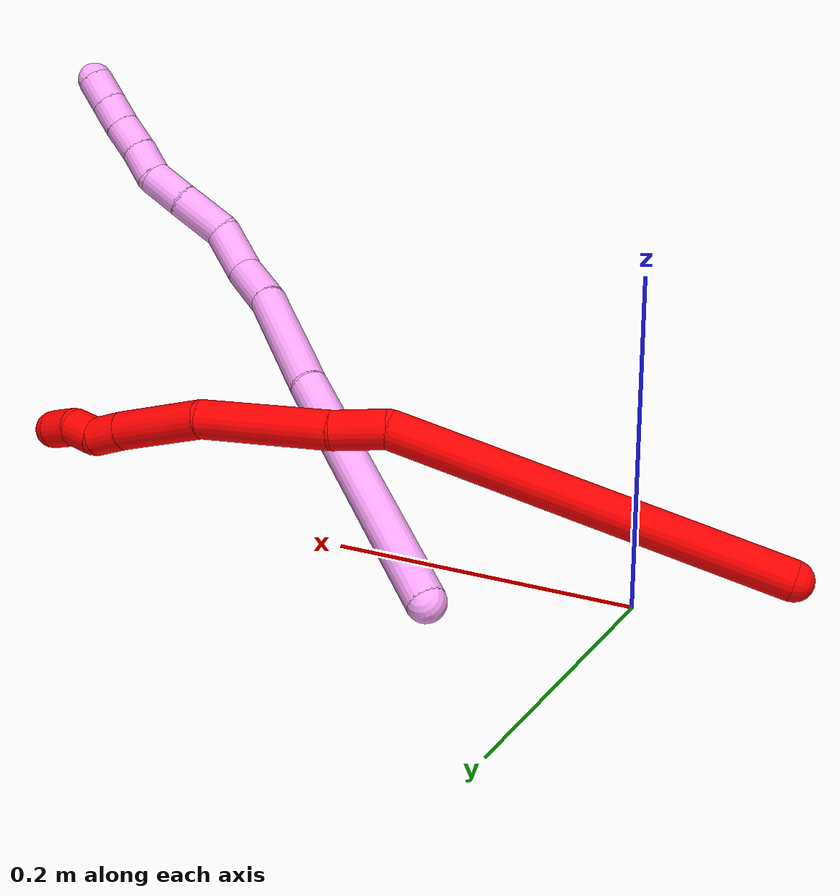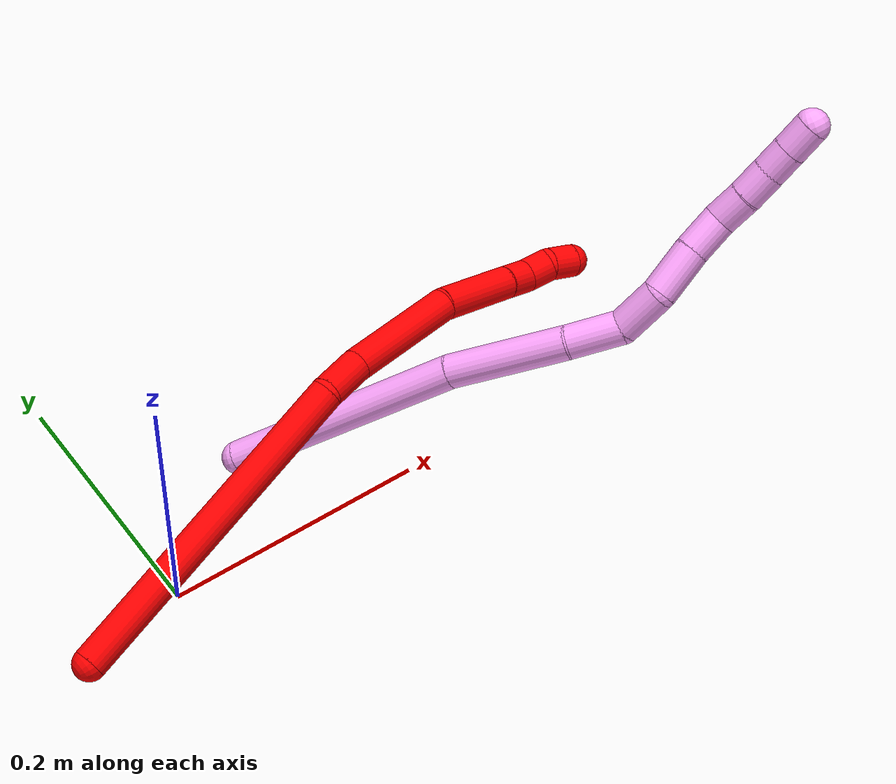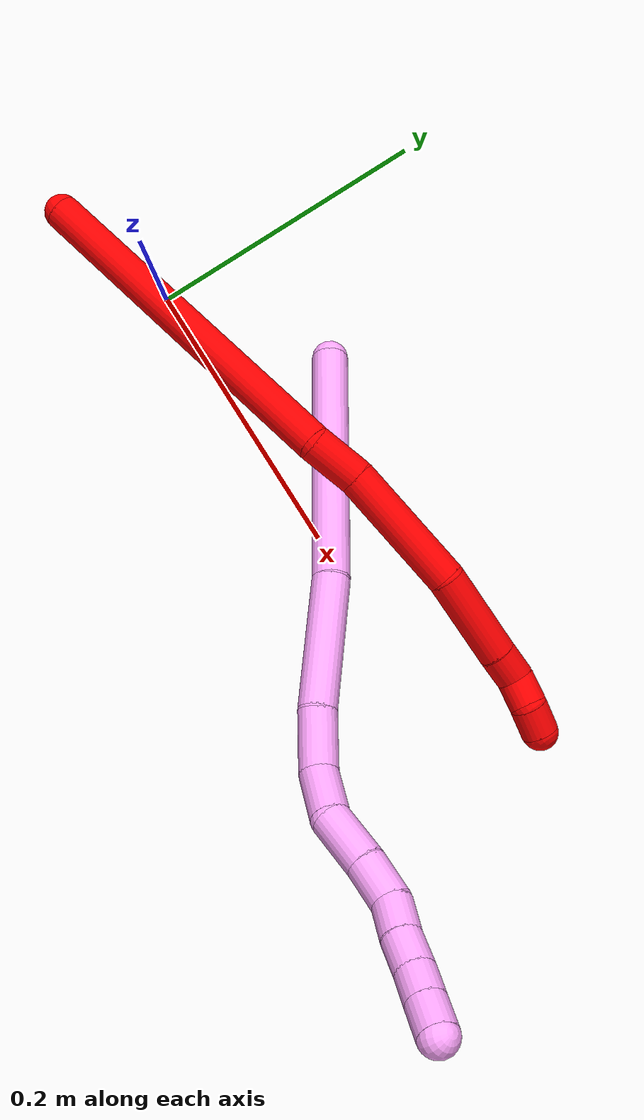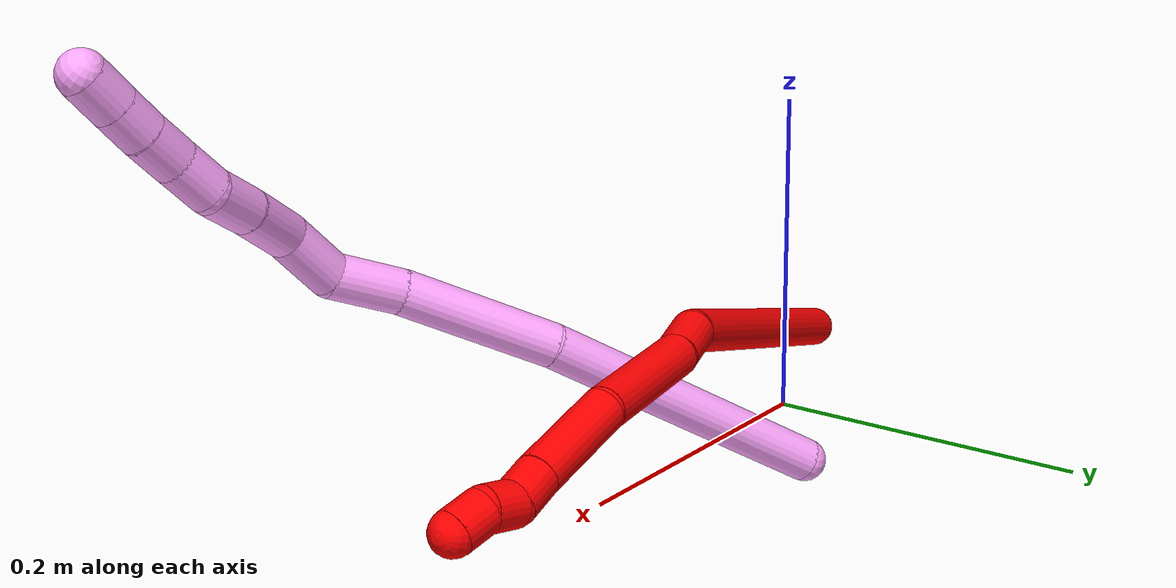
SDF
<sdf version="1.7">
 <world name="default">
  <model name="photoneo_s_sensor">
   <static>1</static>
   <pose>0 0 2 1.57079 1.57079 3.14159</pose>
   <link name="link">
    <inertial><mass>0.1</mass></inertial>
    <sensor name="sensor" type="depth">
     <update_rate>30</update_rate>
     <camera>
      <horizontal_fov>1.22</horizontal_fov>
      <image><width>1920</width><height>1200</height><format>B8G8R8</format></image>
      <clip><near>0.1</near><far>4</far></clip>
      <depth_camera><output>points</output></depth_camera>
     </camera>
     <plugin name="camera_plugin" filename="libgazebo_ros_depth_camera.so">
      <baseline>0.2</baseline>
      <alwaysOn>1</alwaysOn>
      <updateRate>0.0</updateRate>
      <cameraName>camera_ir</cameraName>
      <imageTopicName>/camera/color/image_raw</imageTopicName>
      <cameraInfoTopicName>/camera/color/camera_info</cameraInfoTopicName>
      <depthImageTopicName>/camera/depth/image_raw</depthImageTopicName>
      <depthImageCameraInfoTopicName>/camera/depth/camera_info</depthImageCameraInfoTopicName>
      <pointCloudTopicName>/camera/depth/points</pointCloudTopicName>
      <frameName>fr_optical</frameName>
      <pointCloudCutoff>0.1</pointCloudCutoff>
      <pointCloudCutoffMax>2.0</pointCloudCutoffMax>
      <distortionK1>0</distortionK1>
      <distortionK2>0</distortionK2>
      <distortionK3>0</distortionK3>
      <distortionT1>0</distortionT1>
      <distortionT2>0</distortionT2>
      <CxPrime>0</CxPrime>
      <Cx>0</Cx>
      <Cy>0</Cy>
      <focalLength>0</focalLength>
      <hackBaseline>0</hackBaseline>
     </plugin>
    </sensor>
   </link>
  </model>
  <model name="bin">
   <static>1</static>
   <link name="bottom">
    <collision name="collision-bottom">
     <pose>0 0 -0.01 0 -0 0</pose>
     <geometry><box><size>0.8 0.6 0.02</size></box></geometry>
     <surface>
      <friction><ode><mu>100</mu><mu2>100</mu2></ode></friction>
      <contact><collide_bitmask>65535</collide_bitmask></contact>
     </surface>
    </collision>
   </link>
   <link name="west_wall">
    <collision name="collision-west_wall">
     <pose>-0.41 0 0.1 0 -0 0</pose>
     <geometry><box><size>0.02 0.6 0.2</size></box></geometry>
     <surface>
      <friction><ode><mu>100</mu><mu2>100</mu2></ode></friction>
      <contact><collide_bitmask>65535</collide_bitmask></contact>
     </surface>
    </collision>
   </link>
   <link name="east_wall">
    <collision name="collision-east_wall">
     <pose>0.41 0 0.1 0 -0 0</pose>
     <geometry><box><size>0.02 0.6 0.2</size></box></geometry>
     <surface>
      <friction><ode><mu>100</mu><mu2>100</mu2></ode></friction>
      <contact><collide_bitmask>65535</collide_bitmask></contact>
     </surface>
    </collision>
   </link>
   <link name="south_wall">
    <collision name="collision-south_wall">
     <pose>0 -0.31 0.1 0 -0 0</pose>
     <geometry><box><size>0.8 0.02 0.2</size></box></geometry>
     <surface>
      <friction><ode><mu>100</mu><mu2>100</mu2></ode></friction>
      <contact><collide_bitmask>65535</collide_bitmask></contact>
     </surface>
    </collision>
   </link>
   <link name="north_wall">
    <collision name="collision-north_wall">
     <pose>0 0.31 0.1 0 -0 0</pose>
     <geometry><box><size>0.8 0.02 0.2</size></box></geometry>
     <surface>
      <friction><ode><mu>100</mu><mu2>100</mu2></ode></friction>
      <contact><collide_bitmask>65535</collide_bitmask></contact>
     </surface>
    </collision>
   </link>
  </model>
  <model name="2">
   <static>0</static>
   <link name="2">
    <collision name="collision-cylinder-e_1_1_4">
     <pose>0.023827 -0.013552 0.123071 0.109673 0.190116 0.010467</pose>
     <geometry><cylinder><radius>0.0125</radius><length>0.252172</length></cylinder></geometry>
     <surface>
      <friction><ode><mu>1.16</mu><mu2>1.16</mu2><slip1>0</slip1><slip2>0</slip2></ode></friction>
      <contact><ode><kp>1e+06</kp><kd>1</kd><max_vel>0</max_vel><min_depth>0.001</min_depth></ode></contact>
     </surface>
    </collision>
    <visual name="visual-cylinder-e_1_1_4">
     <pose>0.023827 -0.013552 0.123071 0.109673 0.190116 0.010467</pose>
     <geometry><cylinder><radius>0.0125</radius><length>0.252172</length></cylinder></geometry>
     <material><ambient>1 0 0 1</ambient></material>
    </visual>
    <collision name="collision-cylinder-e_2_4_5">
     <pose>0.045763 -0.033029 0.262686 0.343913 -0.107141 -0.018625</pose>
     <geometry><cylinder><radius>0.0125</radius><length>0.035351</length></cylinder></geometry>
     <surface>
      <friction><ode><mu>1.16</mu><mu2>1.16</mu2><slip1>0</slip1><slip2>0</slip2></ode></friction>
      <contact><ode><kp>1e+06</kp><kd>1</kd><max_vel>0</max_vel><min_depth>0.001</min_depth></ode></contact>
     </surface>
    </collision>
    <visual name="visual-cylinder-e_2_4_5">
     <pose>0.045763 -0.033029 0.262686 0.343913 -0.107141 -0.018625</pose>
     <geometry><cylinder><radius>0.0125</radius><length>0.035351</length></cylinder></geometry>
     <material><ambient>1 0 0 1</ambient></material>
    </visual>
    <collision name="collision-cylinder-e_3_5_6">
     <pose>0.038347 -0.046118 0.322178 0.165275 -0.126242 -0.01047</pose>
     <geometry><cylinder><radius>0.0125</radius><length>0.087778</length></cylinder></geometry>
     <surface>
      <friction><ode><mu>1.16</mu><mu2>1.16</mu2><slip1>0</slip1><slip2>0</slip2></ode></friction>
      <contact><ode><kp>1e+06</kp><kd>1</kd><max_vel>0</max_vel><min_depth>0.001</min_depth></ode></contact>
     </surface>
    </collision>
    <visual name="visual-cylinder-e_3_5_6">
     <pose>0.038347 -0.046118 0.322178 0.165275 -0.126242 -0.01047</pose>
     <geometry><cylinder><radius>0.0125</radius><length>0.087778</length></cylinder></geometry>
     <material><ambient>1 0 0 1</ambient></material>
    </visual>
    <collision name="collision-cylinder-e_4_6_7">
     <pose>0.021132 -0.057952 0.393423 0.163551 -0.387 -0.032117</pose>
     <geometry><cylinder><radius>0.0125</radius><length>0.061943</length></cylinder></geometry>
     <surface>
      <friction><ode><mu>1.16</mu><mu2>1.16</mu2><slip1>0</slip1><slip2>0</slip2></ode></friction>
      <contact><ode><kp>1e+06</kp><kd>1</kd><max_vel>0</max_vel><min_depth>0.001</min_depth></ode></contact>
     </surface>
    </collision>
    <visual name="visual-cylinder-e_4_6_7">
     <pose>0.021132 -0.057952 0.393423 0.163551 -0.387 -0.032117</pose>
     <geometry><cylinder><radius>0.0125</radius><length>0.061943</length></cylinder></geometry>
     <material><ambient>1 0 0 1</ambient></material>
    </visual>
    <collision name="collision-cylinder-e_5_7_8">
     <pose>0.00487 -0.064847 0.431583 0.221945 -0.424835 -0.048055</pose>
     <geometry><cylinder><radius>0.0125</radius><length>0.022192</length></cylinder></geometry>
     <surface>
      <friction><ode><mu>1.16</mu><mu2>1.16</mu2><slip1>0</slip1><slip2>0</slip2></ode></friction>
      <contact><ode><kp>1e+06</kp><kd>1</kd><max_vel>0</max_vel><min_depth>0.001</min_depth></ode></contact>
     </surface>
    </collision>
    <visual name="visual-cylinder-e_5_7_8">
     <pose>0.00487 -0.064847 0.431583 0.221945 -0.424835 -0.048055</pose>
     <geometry><cylinder><radius>0.0125</radius><length>0.022192</length></cylinder></geometry>
     <material><ambient>1 0 0 1</ambient></material>
    </visual>
    <collision name="collision-cylinder-e_6_8_9">
     <pose>-0.000488 -0.065361 0.45127 -0.172456 -0.078499 0.006789</pose>
     <geometry><cylinder><radius>0.0125</radius><length>0.020008</length></cylinder></geometry>
     <surface>
      <friction><ode><mu>1.16</mu><mu2>1.16</mu2><slip1>0</slip1><slip2>0</slip2></ode></friction>
      <contact><ode><kp>1e+06</kp><kd>1</kd><max_vel>0</max_vel><min_depth>0.001</min_depth></ode></contact>
     </surface>
    </collision>
    <visual name="visual-cylinder-e_6_8_9">
     <pose>-0.000488 -0.065361 0.45127 -0.172456 -0.078499 0.006789</pose>
     <geometry><cylinder><radius>0.0125</radius><length>0.020008</length></cylinder></geometry>
     <material><ambient>1 0 0 1</ambient></material>
    </visual>
    <collision name="collision-cylinder-e_7_9_2">
     <pose>-0.005873 -0.063564 0.470285 -0.009286 -0.464064 0.002194</pose>
     <geometry><cylinder><radius>0.0125</radius><length>0.020555</length></cylinder></geometry>
     <surface>
      <friction><ode><mu>1.16</mu><mu2>1.16</mu2><slip1>0</slip1><slip2>0</slip2></ode></friction>
      <contact><ode><kp>1e+06</kp><kd>1</kd><max_vel>0</max_vel><min_depth>0.001</min_depth></ode></contact>
     </surface>
    </collision>
    <visual name="visual-cylinder-e_7_9_2">
     <pose>-0.005873 -0.063564 0.470285 -0.009286 -0.464064 0.002194</pose>
     <geometry><cylinder><radius>0.0125</radius><length>0.020555</length></cylinder></geometry>
     <material><ambient>1 0 0 1</ambient></material>
    </visual>
    <collision name="collision-sphere-2">
     <pose>-0.010473 -0.063479 0.479475 0 -0 0</pose>
     <geometry><sphere><radius>0.0125</radius></sphere></geometry>
     <surface>
      <friction><ode><mu>1.16</mu><mu2>1.16</mu2><slip1>0</slip1><slip2>0</slip2></ode></friction>
      <contact><ode><kp>1e+06</kp><kd>1</kd><max_vel>0</max_vel><min_depth>0.001</min_depth></ode></contact>
     </surface>
    </collision>
    <visual name="visual-sphere-2">
     <pose>-0.010473 -0.063479 0.479475 0 -0 0</pose>
     <geometry><sphere><radius>0.0125</radius></sphere></geometry>
     <material><ambient>1 0 0 1</ambient></material>
    </visual>
    <collision name="collision-sphere-9">
     <pose>-0.001273 -0.06365 0.461095 0 -0 0</pose>
     <geometry><sphere><radius>0.0125</radius></sphere></geometry>
     <surface>
      <friction><ode><mu>1.16</mu><mu2>1.16</mu2><slip1>0</slip1><slip2>0</slip2></ode></friction>
      <contact><ode><kp>1e+06</kp><kd>1</kd><max_vel>0</max_vel><min_depth>0.001</min_depth></ode></contact>
     </surface>
    </collision>
    <visual name="visual-sphere-9">
     <pose>-0.001273 -0.06365 0.461095 0 -0 0</pose>
     <geometry><sphere><radius>0.0125</radius></sphere></geometry>
     <material><ambient>1 0 0 1</ambient></material>
    </visual>
    <collision name="collision-sphere-4">
     <pose>0.047654 -0.027104 0.246141 0 -0 0</pose>
     <geometry><sphere><radius>0.0125</radius></sphere></geometry>
     <surface>
      <friction><ode><mu>1.16</mu><mu2>1.16</mu2><slip1>0</slip1><slip2>0</slip2></ode></friction>
      <contact><ode><kp>1e+06</kp><kd>1</kd><max_vel>0</max_vel><min_depth>0.001</min_depth></ode></contact>
     </surface>
    </collision>
    <visual name="visual-sphere-4">
     <pose>0.047654 -0.027104 0.246141 0 -0 0</pose>
     <geometry><sphere><radius>0.0125</radius></sphere></geometry>
     <material><ambient>1 0 0 1</ambient></material>
    </visual>
    <collision name="collision-sphere-1">
     <geometry><sphere><radius>0.0125</radius></sphere></geometry>
     <surface>
      <friction><ode><mu>1.16</mu><mu2>1.16</mu2><slip1>0</slip1><slip2>0</slip2></ode></friction>
      <contact><ode><kp>1e+06</kp><kd>1</kd><max_vel>0</max_vel><min_depth>0.001</min_depth></ode></contact>
     </surface>
    </collision>
    <visual name="visual-sphere-1">
     <geometry><sphere><radius>0.0125</radius></sphere></geometry>
     <material><ambient>1 0 0 1</ambient></material>
    </visual>
    <collision name="collision-sphere-8">
     <pose>0.000296 -0.067072 0.441445 0 -0 0</pose>
     <geometry><sphere><radius>0.0125</radius></sphere></geometry>
     <surface>
      <friction><ode><mu>1.16</mu><mu2>1.16</mu2><slip1>0</slip1><slip2>0</slip2></ode></friction>
      <contact><ode><kp>1e+06</kp><kd>1</kd><max_vel>0</max_vel><min_depth>0.001</min_depth></ode></contact>
     </surface>
    </collision>
    <visual name="visual-sphere-8">
     <pose>0.000296 -0.067072 0.441445 0 -0 0</pose>
     <geometry><sphere><radius>0.0125</radius></sphere></geometry>
     <material><ambient>1 0 0 1</ambient></material>
    </visual>
    <collision name="collision-sphere-5">
     <pose>0.043873 -0.038955 0.279232 0 -0 0</pose>
     <geometry><sphere><radius>0.0125</radius></sphere></geometry>
     <surface>
      <friction><ode><mu>1.16</mu><mu2>1.16</mu2><slip1>0</slip1><slip2>0</slip2></ode></friction>
      <contact><ode><kp>1e+06</kp><kd>1</kd><max_vel>0</max_vel><min_depth>0.001</min_depth></ode></contact>
     </surface>
    </collision>
    <visual name="visual-sphere-5">
     <pose>0.043873 -0.038955 0.279232 0 -0 0</pose>
     <geometry><sphere><radius>0.0125</radius></sphere></geometry>
     <material><ambient>1 0 0 1</ambient></material>
    </visual>
    <collision name="collision-sphere-6">
     <pose>0.032821 -0.053282 0.365125 0 -0 0</pose>
     <geometry><sphere><radius>0.0125</radius></sphere></geometry>
     <surface>
      <friction><ode><mu>1.16</mu><mu2>1.16</mu2><slip1>0</slip1><slip2>0</slip2></ode></friction>
      <contact><ode><kp>1e+06</kp><kd>1</kd><max_vel>0</max_vel><min_depth>0.001</min_depth></ode></contact>
     </surface>
    </collision>
    <visual name="visual-sphere-6">
     <pose>0.032821 -0.053282 0.365125 0 -0 0</pose>
     <geometry><sphere><radius>0.0125</radius></sphere></geometry>
     <material><ambient>1 0 0 1</ambient></material>
    </visual>
    <collision name="collision-sphere-7">
     <pose>0.009443 -0.062622 0.421721 0 -0 0</pose>
     <geometry><sphere><radius>0.0125</radius></sphere></geometry>
     <surface>
      <friction><ode><mu>1.16</mu><mu2>1.16</mu2><slip1>0</slip1><slip2>0</slip2></ode></friction>
      <contact><ode><kp>1e+06</kp><kd>1</kd><max_vel>0</max_vel><min_depth>0.001</min_depth></ode></contact>
     </surface>
    </collision>
    <visual name="visual-sphere-7">
     <pose>0.009443 -0.062622 0.421721 0 -0 0</pose>
     <geometry><sphere><radius>0.0125</radius></sphere></geometry>
     <material><ambient>1 0 0 1</ambient></material>
    </visual>
    <inertial>
     <pose>0.024558 -0.032553 0.242489 0 -0 0</pose>
     <mass>0.5</mass>
     <inertia>
      <ixx>0.001423</ixx>
      <ixy>0</ixy>
      <ixz>0</ixz>
      <iyy>0.001436</iyy>
      <iyz>0</iyz>
      <izz>-3.9e-05</izz>
     </inertia>
    </inertial>
   </link>
   <pose>-0.086318 -0.029257 0.024102 1.18221 -1.14289 1.98695</pose>
  </model>
  <model name="4">
   <static>0</static>
   <link name="4">
    <collision name="collision-cylinder-e_1_1_4">
     <pose>-0.026221 -0.085779 -0.00341 1.61053 -0.296442 -0.308276</pose>
     <geometry><cylinder><radius>0.0125</radius><length>0.179524</length></cylinder></geometry>
     <surface>
      <friction><ode><mu>1.16</mu><mu2>1.16</mu2><slip1>0</slip1><slip2>0</slip2></ode></friction>
      <contact><ode><kp>1e+06</kp><kd>1</kd><max_vel>0</max_vel><min_depth>0.001</min_depth></ode></contact>
     </surface>
    </collision>
    <visual name="visual-cylinder-e_1_1_4">
     <pose>-0.026221 -0.085779 -0.00341 1.61053 -0.296442 -0.308276</pose>
     <geometry><cylinder><radius>0.0125</radius><length>0.179524</length></cylinder></geometry>
     <material><ambient>1 0.65098 0.996078 1</ambient></material>
    </visual>
    <collision name="collision-cylinder-e_2_4_5">
     <pose>-0.064446 -0.2148 -0.002607 1.47365 -0.269565 -0.244835</pose>
     <geometry><cylinder><radius>0.0125</radius><length>0.09015</length></cylinder></geometry>
     <surface>
      <friction><ode><mu>1.16</mu><mu2>1.16</mu2><slip1>0</slip1><slip2>0</slip2></ode></friction>
      <contact><ode><kp>1e+06</kp><kd>1</kd><max_vel>0</max_vel><min_depth>0.001</min_depth></ode></contact>
     </surface>
    </collision>
    <visual name="visual-cylinder-e_2_4_5">
     <pose>-0.064446 -0.2148 -0.002607 1.47365 -0.269565 -0.244835</pose>
     <geometry><cylinder><radius>0.0125</radius><length>0.09015</length></cylinder></geometry>
     <material><ambient>1 0.65098 0.996078 1</ambient></material>
    </visual>
    <collision name="collision-cylinder-e_3_5_6">
     <pose>-0.084494 -0.276114 0.003545 1.46399 -0.416638 -0.375396</pose>
     <geometry><cylinder><radius>0.0125</radius><length>0.039751</length></cylinder></geometry>
     <surface>
      <friction><ode><mu>1.16</mu><mu2>1.16</mu2><slip1>0</slip1><slip2>0</slip2></ode></friction>
      <contact><ode><kp>1e+06</kp><kd>1</kd><max_vel>0</max_vel><min_depth>0.001</min_depth></ode></contact>
     </surface>
    </collision>
    <visual name="visual-cylinder-e_3_5_6">
     <pose>-0.084494 -0.276114 0.003545 1.46399 -0.416638 -0.375396</pose>
     <geometry><cylinder><radius>0.0125</radius><length>0.039751</length></cylinder></geometry>
     <material><ambient>1 0.65098 0.996078 1</ambient></material>
    </visual>
    <collision name="collision-cylinder-e_4_6_7">
     <pose>-0.097185 -0.309975 -0.001331 1.97818 -0.263952 -0.398372</pose>
     <geometry><cylinder><radius>0.0125</radius><length>0.035626</length></cylinder></geometry>
     <surface>
      <friction><ode><mu>1.16</mu><mu2>1.16</mu2><slip1>0</slip1><slip2>0</slip2></ode></friction>
      <contact><ode><kp>1e+06</kp><kd>1</kd><max_vel>0</max_vel><min_depth>0.001</min_depth></ode></contact>
     </surface>
    </collision>
    <visual name="visual-cylinder-e_4_6_7">
     <pose>-0.097185 -0.309975 -0.001331 1.97818 -0.263952 -0.398372</pose>
     <geometry><cylinder><radius>0.0125</radius><length>0.035626</length></cylinder></geometry>
     <material><ambient>1 0.65098 0.996078 1</ambient></material>
    </visual>
    <collision name="collision-cylinder-e_5_7_8">
     <pose>-0.112472 -0.337939 -0.016986 2.19887 -0.615497 -1.11521</pose>
     <geometry><cylinder><radius>0.0125</radius><length>0.036859</length></cylinder></geometry>
     <surface>
      <friction><ode><mu>1.16</mu><mu2>1.16</mu2><slip1>0</slip1><slip2>0</slip2></ode></friction>
      <contact><ode><kp>1e+06</kp><kd>1</kd><max_vel>0</max_vel><min_depth>0.001</min_depth></ode></contact>
     </surface>
    </collision>
    <visual name="visual-cylinder-e_5_7_8">
     <pose>-0.112472 -0.337939 -0.016986 2.19887 -0.615497 -1.11521</pose>
     <geometry><cylinder><radius>0.0125</radius><length>0.036859</length></cylinder></geometry>
     <material><ambient>1 0.65098 0.996078 1</ambient></material>
    </visual>
    <collision name="collision-cylinder-e_6_8_9">
     <pose>-0.13127 -0.360153 -0.031695 2.09979 -0.611744 -1.00626</pose>
     <geometry><cylinder><radius>0.0125</radius><length>0.028406</length></cylinder></geometry>
     <surface>
      <friction><ode><mu>1.16</mu><mu2>1.16</mu2><slip1>0</slip1><slip2>0</slip2></ode></friction>
      <contact><ode><kp>1e+06</kp><kd>1</kd><max_vel>0</max_vel><min_depth>0.001</min_depth></ode></contact>
     </surface>
    </collision>
    <visual name="visual-cylinder-e_6_8_9">
     <pose>-0.13127 -0.360153 -0.031695 2.09979 -0.611744 -1.00626</pose>
     <geometry><cylinder><radius>0.0125</radius><length>0.028406</length></cylinder></geometry>
     <material><ambient>1 0.65098 0.996078 1</ambient></material>
    </visual>
    <collision name="collision-cylinder-e_7_9_10">
     <pose>-0.142717 -0.380973 -0.042013 1.96216 -0.274995 -0.407825</pose>
     <geometry><cylinder><radius>0.0125</radius><length>0.024239</length></cylinder></geometry>
     <surface>
      <friction><ode><mu>1.16</mu><mu2>1.16</mu2><slip1>0</slip1><slip2>0</slip2></ode></friction>
      <contact><ode><kp>1e+06</kp><kd>1</kd><max_vel>0</max_vel><min_depth>0.001</min_depth></ode></contact>
     </surface>
    </collision>
    <visual name="visual-cylinder-e_7_9_10">
     <pose>-0.142717 -0.380973 -0.042013 1.96216 -0.274995 -0.407825</pose>
     <geometry><cylinder><radius>0.0125</radius><length>0.024239</length></cylinder></geometry>
     <material><ambient>1 0.65098 0.996078 1</ambient></material>
    </visual>
    <collision name="collision-cylinder-e_8_10_11">
     <pose>-0.149871 -0.401406 -0.051367 2.04107 -0.342689 -0.549856</pose>
     <geometry><cylinder><radius>0.0125</radius><length>0.022989</length></cylinder></geometry>
     <surface>
      <friction><ode><mu>1.16</mu><mu2>1.16</mu2><slip1>0</slip1><slip2>0</slip2></ode></friction>
      <contact><ode><kp>1e+06</kp><kd>1</kd><max_vel>0</max_vel><min_depth>0.001</min_depth></ode></contact>
     </surface>
    </collision>
    <visual name="visual-cylinder-e_8_10_11">
     <pose>-0.149871 -0.401406 -0.051367 2.04107 -0.342689 -0.549856</pose>
     <geometry><cylinder><radius>0.0125</radius><length>0.022989</length></cylinder></geometry>
     <material><ambient>1 0.65098 0.996078 1</ambient></material>
    </visual>
    <collision name="collision-cylinder-e_9_11_12">
     <pose>-0.156472 -0.419781 -0.060702 2.04058 -0.272926 -0.44018</pose>
     <geometry><cylinder><radius>0.0125</radius><length>0.02032</length></cylinder></geometry>
     <surface>
      <friction><ode><mu>1.16</mu><mu2>1.16</mu2><slip1>0</slip1><slip2>0</slip2></ode></friction>
      <contact><ode><kp>1e+06</kp><kd>1</kd><max_vel>0</max_vel><min_depth>0.001</min_depth></ode></contact>
     </surface>
    </collision>
    <visual name="visual-cylinder-e_9_11_12">
     <pose>-0.156472 -0.419781 -0.060702 2.04058 -0.272926 -0.44018</pose>
     <geometry><cylinder><radius>0.0125</radius><length>0.02032</length></cylinder></geometry>
     <material><ambient>1 0.65098 0.996078 1</ambient></material>
    </visual>
    <collision name="collision-cylinder-e_10_12_2">
     <pose>-0.162197 -0.437966 -0.070038 2.04927 -0.273208 -0.444809</pose>
     <geometry><cylinder><radius>0.0125</radius><length>0.022137</length></cylinder></geometry>
     <surface>
      <friction><ode><mu>1.16</mu><mu2>1.16</mu2><slip1>0</slip1><slip2>0</slip2></ode></friction>
      <contact><ode><kp>1e+06</kp><kd>1</kd><max_vel>0</max_vel><min_depth>0.001</min_depth></ode></contact>
     </surface>
    </collision>
    <visual name="visual-cylinder-e_10_12_2">
     <pose>-0.162197 -0.437966 -0.070038 2.04927 -0.273208 -0.444809</pose>
     <geometry><cylinder><radius>0.0125</radius><length>0.022137</length></cylinder></geometry>
     <material><ambient>1 0.65098 0.996078 1</ambient></material>
    </visual>
    <collision name="collision-sphere-2">
     <pose>-0.165183 -0.447427 -0.074945 0 -0 0</pose>
     <geometry><sphere><radius>0.0125</radius></sphere></geometry>
     <surface>
      <friction><ode><mu>1.16</mu><mu2>1.16</mu2><slip1>0</slip1><slip2>0</slip2></ode></friction>
      <contact><ode><kp>1e+06</kp><kd>1</kd><max_vel>0</max_vel><min_depth>0.001</min_depth></ode></contact>
     </surface>
    </collision>
    <visual name="visual-sphere-2">
     <pose>-0.165183 -0.447427 -0.074945 0 -0 0</pose>
     <geometry><sphere><radius>0.0125</radius></sphere></geometry>
     <material><ambient>1 0.65098 0.996078 1</ambient></material>
    </visual>
    <collision name="collision-sphere-12">
     <pose>-0.15921 -0.428505 -0.065131 0 -0 0</pose>
     <geometry><sphere><radius>0.0125</radius></sphere></geometry>
     <surface>
      <friction><ode><mu>1.16</mu><mu2>1.16</mu2><slip1>0</slip1><slip2>0</slip2></ode></friction>
      <contact><ode><kp>1e+06</kp><kd>1</kd><max_vel>0</max_vel><min_depth>0.001</min_depth></ode></contact>
     </surface>
    </collision>
    <visual name="visual-sphere-12">
     <pose>-0.15921 -0.428505 -0.065131 0 -0 0</pose>
     <geometry><sphere><radius>0.0125</radius></sphere></geometry>
     <material><ambient>1 0.65098 0.996078 1</ambient></material>
    </visual>
    <collision name="collision-sphere-11">
     <pose>-0.153733 -0.411057 -0.056273 0 -0 0</pose>
     <geometry><sphere><radius>0.0125</radius></sphere></geometry>
     <surface>
      <friction><ode><mu>1.16</mu><mu2>1.16</mu2><slip1>0</slip1><slip2>0</slip2></ode></friction>
      <contact><ode><kp>1e+06</kp><kd>1</kd><max_vel>0</max_vel><min_depth>0.001</min_depth></ode></contact>
     </surface>
    </collision>
    <visual name="visual-sphere-11">
     <pose>-0.153733 -0.411057 -0.056273 0 -0 0</pose>
     <geometry><sphere><radius>0.0125</radius></sphere></geometry>
     <material><ambient>1 0.65098 0.996078 1</ambient></material>
    </visual>
    <collision name="collision-sphere-10">
     <pose>-0.146008 -0.391755 -0.046462 0 -0 0</pose>
     <geometry><sphere><radius>0.0125</radius></sphere></geometry>
     <surface>
      <friction><ode><mu>1.16</mu><mu2>1.16</mu2><slip1>0</slip1><slip2>0</slip2></ode></friction>
      <contact><ode><kp>1e+06</kp><kd>1</kd><max_vel>0</max_vel><min_depth>0.001</min_depth></ode></contact>
     </surface>
    </collision>
    <visual name="visual-sphere-10">
     <pose>-0.146008 -0.391755 -0.046462 0 -0 0</pose>
     <geometry><sphere><radius>0.0125</radius></sphere></geometry>
     <material><ambient>1 0.65098 0.996078 1</ambient></material>
    </visual>
    <collision name="collision-sphere-9">
     <pose>-0.139426 -0.370191 -0.037563 0 -0 0</pose>
     <geometry><sphere><radius>0.0125</radius></sphere></geometry>
     <surface>
      <friction><ode><mu>1.16</mu><mu2>1.16</mu2><slip1>0</slip1><slip2>0</slip2></ode></friction>
      <contact><ode><kp>1e+06</kp><kd>1</kd><max_vel>0</max_vel><min_depth>0.001</min_depth></ode></contact>
     </surface>
    </collision>
    <visual name="visual-sphere-9">
     <pose>-0.139426 -0.370191 -0.037563 0 -0 0</pose>
     <geometry><sphere><radius>0.0125</radius></sphere></geometry>
     <material><ambient>1 0.65098 0.996078 1</ambient></material>
    </visual>
    <collision name="collision-sphere-4">
     <pose>-0.052442 -0.171558 -0.006821 0 -0 0</pose>
     <geometry><sphere><radius>0.0125</radius></sphere></geometry>
     <surface>
      <friction><ode><mu>1.16</mu><mu2>1.16</mu2><slip1>0</slip1><slip2>0</slip2></ode></friction>
      <contact><ode><kp>1e+06</kp><kd>1</kd><max_vel>0</max_vel><min_depth>0.001</min_depth></ode></contact>
     </surface>
    </collision>
    <visual name="visual-sphere-4">
     <pose>-0.052442 -0.171558 -0.006821 0 -0 0</pose>
     <geometry><sphere><radius>0.0125</radius></sphere></geometry>
     <material><ambient>1 0.65098 0.996078 1</ambient></material>
    </visual>
    <collision name="collision-sphere-1">
     <geometry><sphere><radius>0.0125</radius></sphere></geometry>
     <surface>
      <friction><ode><mu>1.16</mu><mu2>1.16</mu2><slip1>0</slip1><slip2>0</slip2></ode></friction>
      <contact><ode><kp>1e+06</kp><kd>1</kd><max_vel>0</max_vel><min_depth>0.001</min_depth></ode></contact>
     </surface>
    </collision>
    <visual name="visual-sphere-1">
     <geometry><sphere><radius>0.0125</radius></sphere></geometry>
     <material><ambient>1 0.65098 0.996078 1</ambient></material>
    </visual>
    <collision name="collision-sphere-8">
     <pose>-0.123113 -0.350115 -0.025827 0 -0 0</pose>
     <geometry><sphere><radius>0.0125</radius></sphere></geometry>
     <surface>
      <friction><ode><mu>1.16</mu><mu2>1.16</mu2><slip1>0</slip1><slip2>0</slip2></ode></friction>
      <contact><ode><kp>1e+06</kp><kd>1</kd><max_vel>0</max_vel><min_depth>0.001</min_depth></ode></contact>
     </surface>
    </collision>
    <visual name="visual-sphere-8">
     <pose>-0.123113 -0.350115 -0.025827 0 -0 0</pose>
     <geometry><sphere><radius>0.0125</radius></sphere></geometry>
     <material><ambient>1 0.65098 0.996078 1</ambient></material>
    </visual>
    <collision name="collision-sphere-5">
     <pose>-0.07645 -0.258043 0.001607 0 -0 0</pose>
     <geometry><sphere><radius>0.0125</radius></sphere></geometry>
     <surface>
      <friction><ode><mu>1.16</mu><mu2>1.16</mu2><slip1>0</slip1><slip2>0</slip2></ode></friction>
      <contact><ode><kp>1e+06</kp><kd>1</kd><max_vel>0</max_vel><min_depth>0.001</min_depth></ode></contact>
     </surface>
    </collision>
    <visual name="visual-sphere-5">
     <pose>-0.07645 -0.258043 0.001607 0 -0 0</pose>
     <geometry><sphere><radius>0.0125</radius></sphere></geometry>
     <material><ambient>1 0.65098 0.996078 1</ambient></material>
    </visual>
    <collision name="collision-sphere-6">
     <pose>-0.092537 -0.294186 0.005482 0 -0 0</pose>
     <geometry><sphere><radius>0.0125</radius></sphere></geometry>
     <surface>
      <friction><ode><mu>1.16</mu><mu2>1.16</mu2><slip1>0</slip1><slip2>0</slip2></ode></friction>
      <contact><ode><kp>1e+06</kp><kd>1</kd><max_vel>0</max_vel><min_depth>0.001</min_depth></ode></contact>
     </surface>
    </collision>
    <visual name="visual-sphere-6">
     <pose>-0.092537 -0.294186 0.005482 0 -0 0</pose>
     <geometry><sphere><radius>0.0125</radius></sphere></geometry>
     <material><ambient>1 0.65098 0.996078 1</ambient></material>
    </visual>
    <collision name="collision-sphere-7">
     <pose>-0.101832 -0.325763 -0.008144 0 -0 0</pose>
     <geometry><sphere><radius>0.0125</radius></sphere></geometry>
     <surface>
      <friction><ode><mu>1.16</mu><mu2>1.16</mu2><slip1>0</slip1><slip2>0</slip2></ode></friction>
      <contact><ode><kp>1e+06</kp><kd>1</kd><max_vel>0</max_vel><min_depth>0.001</min_depth></ode></contact>
     </surface>
    </collision>
    <visual name="visual-sphere-7">
     <pose>-0.101832 -0.325763 -0.008144 0 -0 0</pose>
     <geometry><sphere><radius>0.0125</radius></sphere></geometry>
     <material><ambient>1 0.65098 0.996078 1</ambient></material>
    </visual>
    <inertial>
     <pose>-0.077775 -0.232313 -0.014527 0 -0 0</pose>
     <mass>0.5</mass>
     <inertia>
      <ixx>0.000343</ixx>
      <ixy>0</ixy>
      <ixz>0</ixz>
      <iyy>-0.000171</iyy>
      <iyz>0</iyz>
      <izz>0.000718</izz>
     </inertia>
    </inertial>
   </link>
   <pose>0.098491 0.074238 0.011498 -2.45228 -0.336929 -2.74178</pose>
  </model>
 </world>
</sdf>
